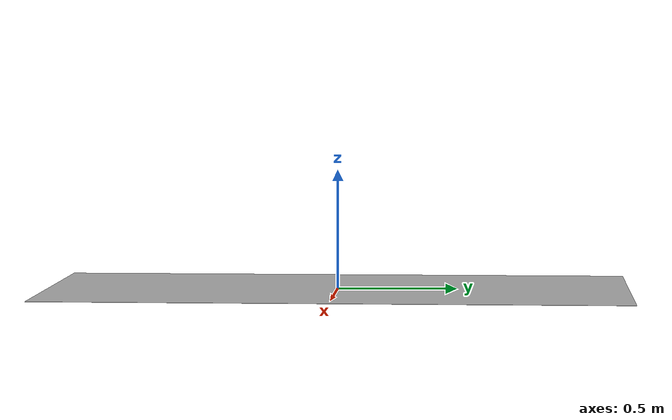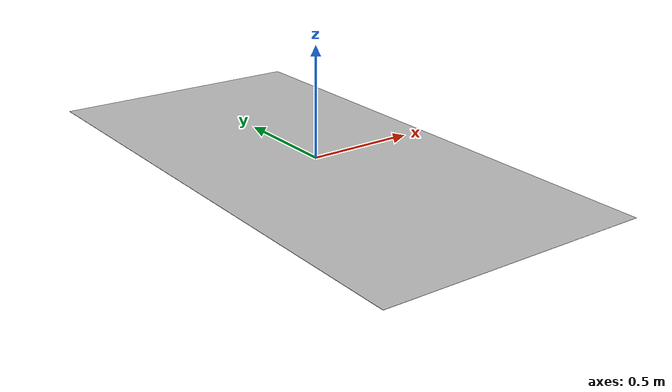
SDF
<?xml version="1.0"?>
<sdf version="1.4">
<model name="track">
  <static>true</static>
    <link name="link">
      <collision name="collision">
        <geometry>
          <plane>
            <normal>0 0 1</normal>
            <size>1.22 2.44</size>
          </plane>
        </geometry>
        <surface>
          <friction>
            <ode>
              <mu>100</mu>
              <mu2>50</mu2>
            </ode>
          </friction>
        </surface>
      </collision>
      <visual name="visual">
        <cast_shadows>false</cast_shadows>
        <geometry>
          <plane>
            <normal>0 0 1</normal>
            <size>1.22 2.44</size>
          </plane>
        </geometry>
        <material>
          <script>
            <uri>model://track/materials/scripts/spa.material</uri>
            <name>MyGroundPlane/Image</name>
          </script>
        </material>
      </visual>
    </link>
  </model>
</sdf>
